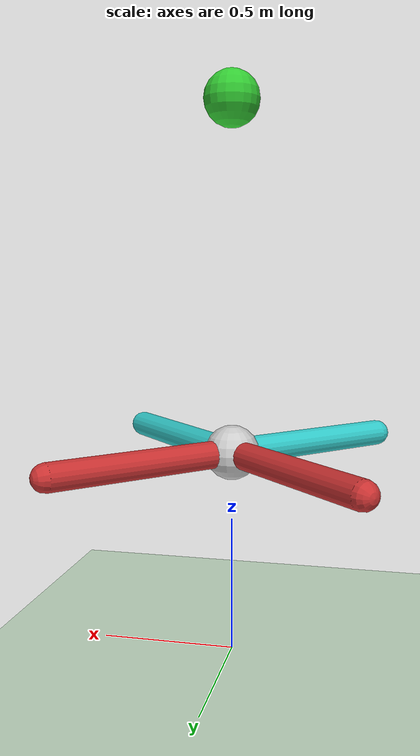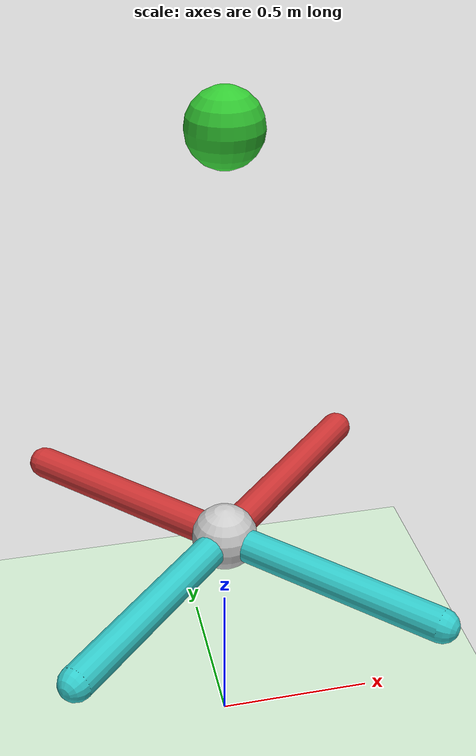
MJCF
<mujoco model="quadrotor">
  <compiler angle="degree" coordinate="local" inertiafromgeom="true" />
  <option integrator="RK4" timestep="0.01" />
  <default>
    <joint armature="1" damping="1" limited="true" />
    <geom conaffinity="0" condim="3" density="5.0" friction="1 0.5 0.5" margin="0.01" rgba="0.8 0.6 0.4 1" />
  </default>
  <asset>
    <texture builtin="gradient" height="100" rgb1="1 1 1" rgb2="0 0 0" type="skybox" width="100" />
    <texture builtin="flat" height="1278" mark="cross" markrgb="1 1 1" name="texgeom" random="0.01" rgb1="0.8 0.6 0.4" rgb2="0.8 0.6 0.4" type="cube" width="127" />
    <texture builtin="checker" height="100" name="texplane" rgb1="0 0 0" rgb2="0.8 0.8 0.8" type="2d" width="100" />
    <material name="MatPlane" reflectance="0.5" shininess="1" specular="1" texrepeat="60 60" texture="texplane" />
    <material name="geom" texture="texgeom" texuniform="true" />
  </asset>
  <worldbody>
    <light cutoff="100" diffuse="1 1 1" dir="-0 0 -1.3" directional="true" exponent="1" pos="0 0 1.3" specular=".1 .1 .1" />
    <geom conaffinity="1" condim="3" material="MatPlane" name="floor" pos="0 0 0" rgba="0.8 0.9 0.8 1" size="40 40 40" type="plane" />
    <body name="copterbody" pos="0 0 0.75">
      <camera mode="trackcom" name="track" pos="0 -3 0.3" xyaxes="1 0 0 0 0 1" />
      <geom name="body_geom" pos="0 0 0" rgba="0.8 0.8 0.8 1" size="0.1" type="sphere" />
      <joint armature="0" damping="0" limited="false" margin="0.01" name="root" pos="0 0 0" type="free" />
      <body name="front_right_frame" pos="0 0 0">
        <geom fromto="0.0 0.0 0.0 0.5 0.5 0.0" name="aux_1_geom" rgba="0.8 0.2 0.2 1" size="0.05" type="capsule" />
      </body>
      <body name="front_left_frame" pos="0 0 0">
        <geom fromto="0.0 0.0 0.0 -0.5 0.5 0.0" name="aux_2_geom" rgba="0.8 0.2 0.2 1" size="0.05" type="capsule" />
      </body>
      <body name="back_left_frame" pos="0 0 0">
        <geom fromto="0.0 0.0 0.0 -0.5 -0.5 0.0" name="aux_3_geom" rgba="0.2 0.8 0.8 1" size="0.05" type="capsule" />
      </body>
      <body name="back_right_frame" pos="0 0 0">
        <geom fromto="0.0 0.0 0.0 0.5 -0.5 0.0" name="aux_4_geom" rgba="0.2 0.8 0.8 1" size="0.05" type="capsule" />
      </body>
    </body>
    <body name="target" pos="0 0 0">
        <geom name="target_geom" pos="0 0 2" rgba="0.2 0.8 0.2 1" size="0.1" type="sphere" />
    </body>
  </worldbody>
  <actuator>
  </actuator>
</mujoco>
